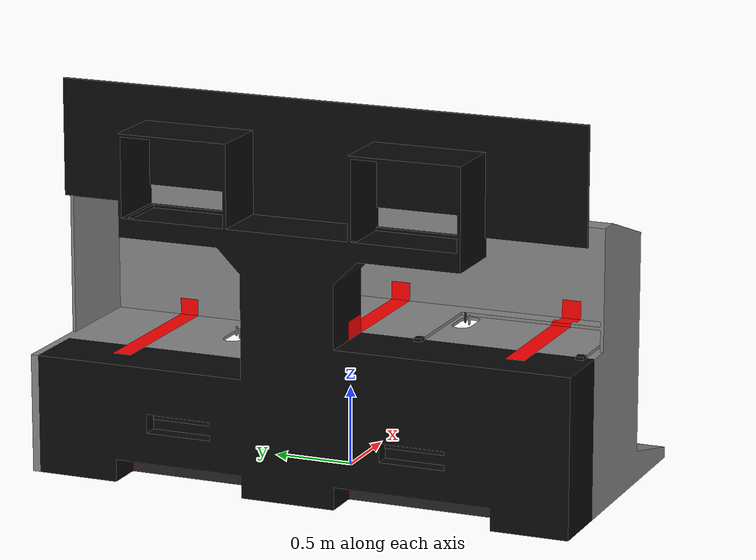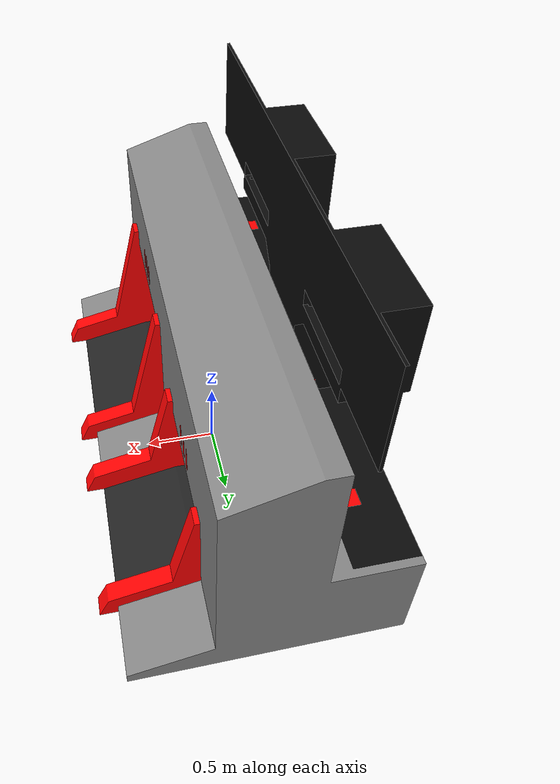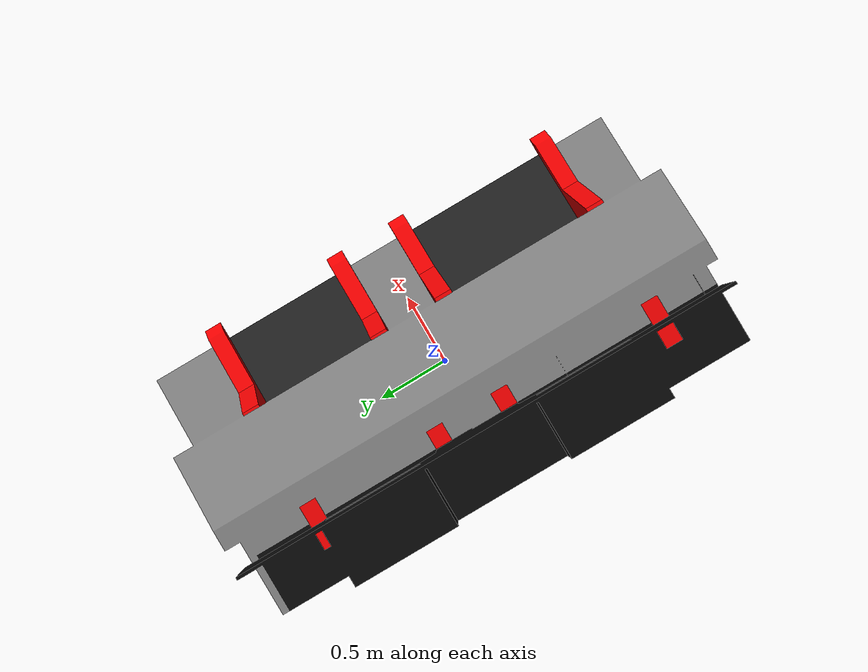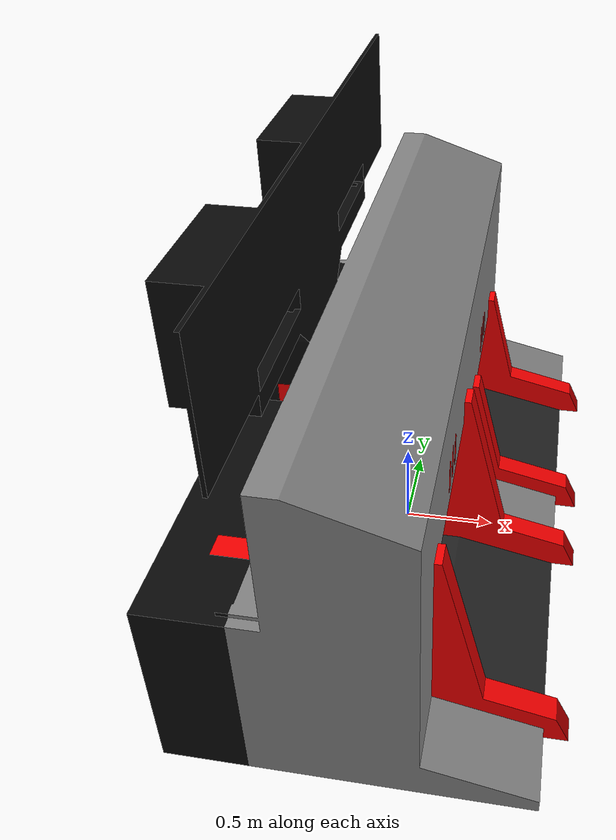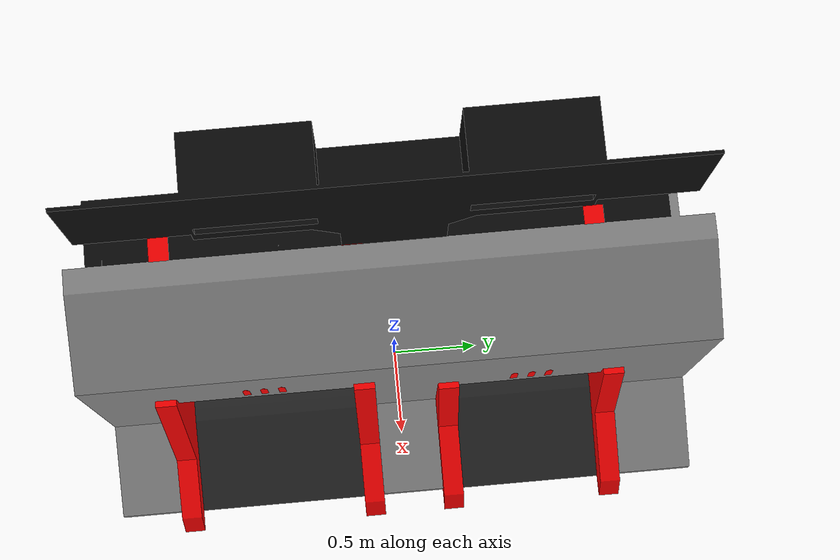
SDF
<?xml version="1.0" encoding="UTF-8"?>
<!-- |    This document was autogenerated by xacro4sdf from model.sdf.xacro            | -->
<!-- |    EDITING THIS FILE BY HAND IS NOT RECOMMENDED                                 | -->
<sdf version="1.7">
	<!--macro defination:visual_collision_with_mesh_rgb-->
	<!--rmuc21_supplier-->
	<model name="rmuc21_supplier">
		<static>1</static>
		<link name="red_supplier">
			<pose>0 0 0 0 0 0</pose>
			<visual name="supplier_visual">
				<geometry>
					<mesh>
						<uri>model://rmuc21_supplier/meshes/supplier.dae</uri>
					</mesh>
				</geometry>
			</visual>
			<collision name="supplier_collision">
				<geometry>
					<mesh>
						<uri>model://rmuc21_supplier/meshes/supplier.dae</uri>
					</mesh>
				</geometry>
			</collision>
			<visual name="extra_visual">
				<geometry>
					<mesh>
						<uri>model://rmuc21_supplier/meshes/supplier_extra.dae</uri>
					</mesh>
				</geometry>
				<material>
					<ambient>1 0 0 1</ambient>
					<diffuse>1 0 0 1</diffuse>
					<specular>1 0 0 1</specular>
				</material>
			</visual>
			<collision name="extra_collision">
				<geometry>
					<mesh>
						<uri>model://rmuc21_supplier/meshes/supplier_extra.dae</uri>
					</mesh>
				</geometry>
			</collision>
		</link>
	</model>
</sdf>
